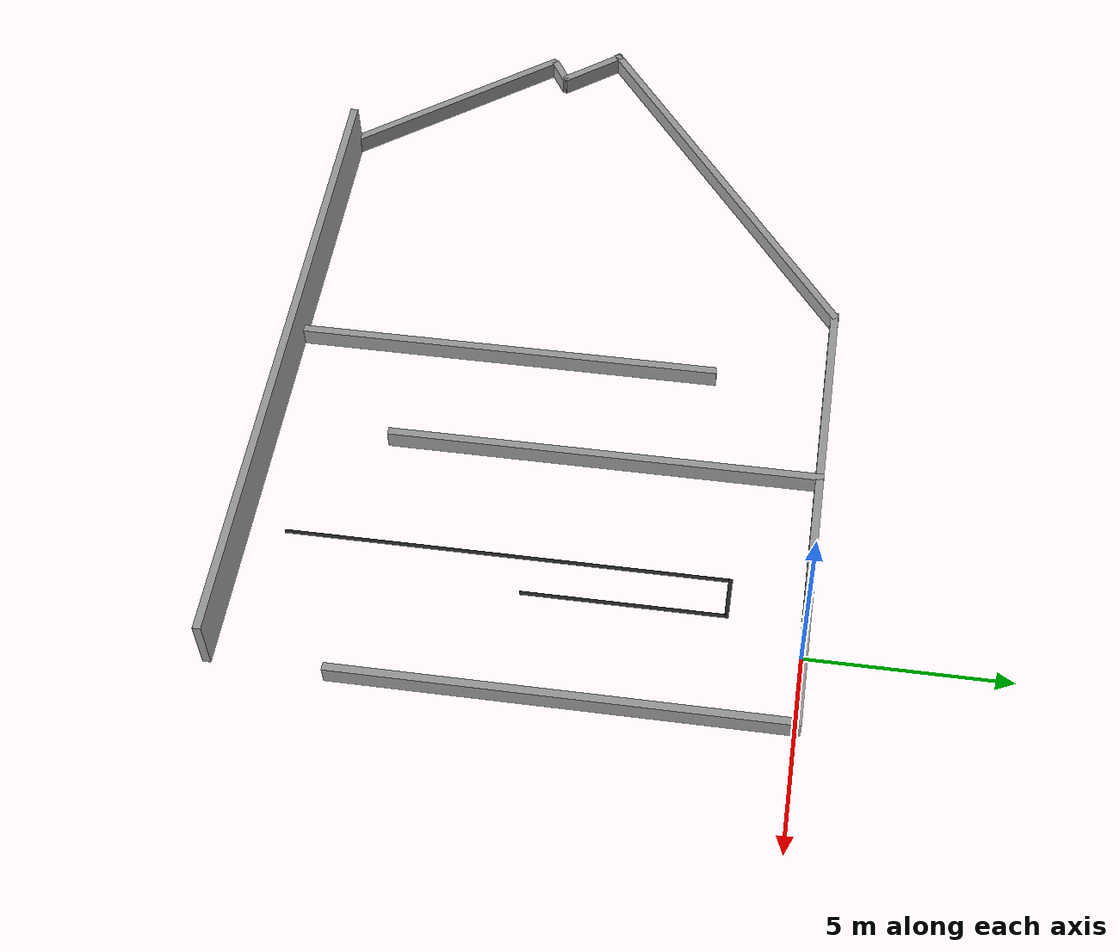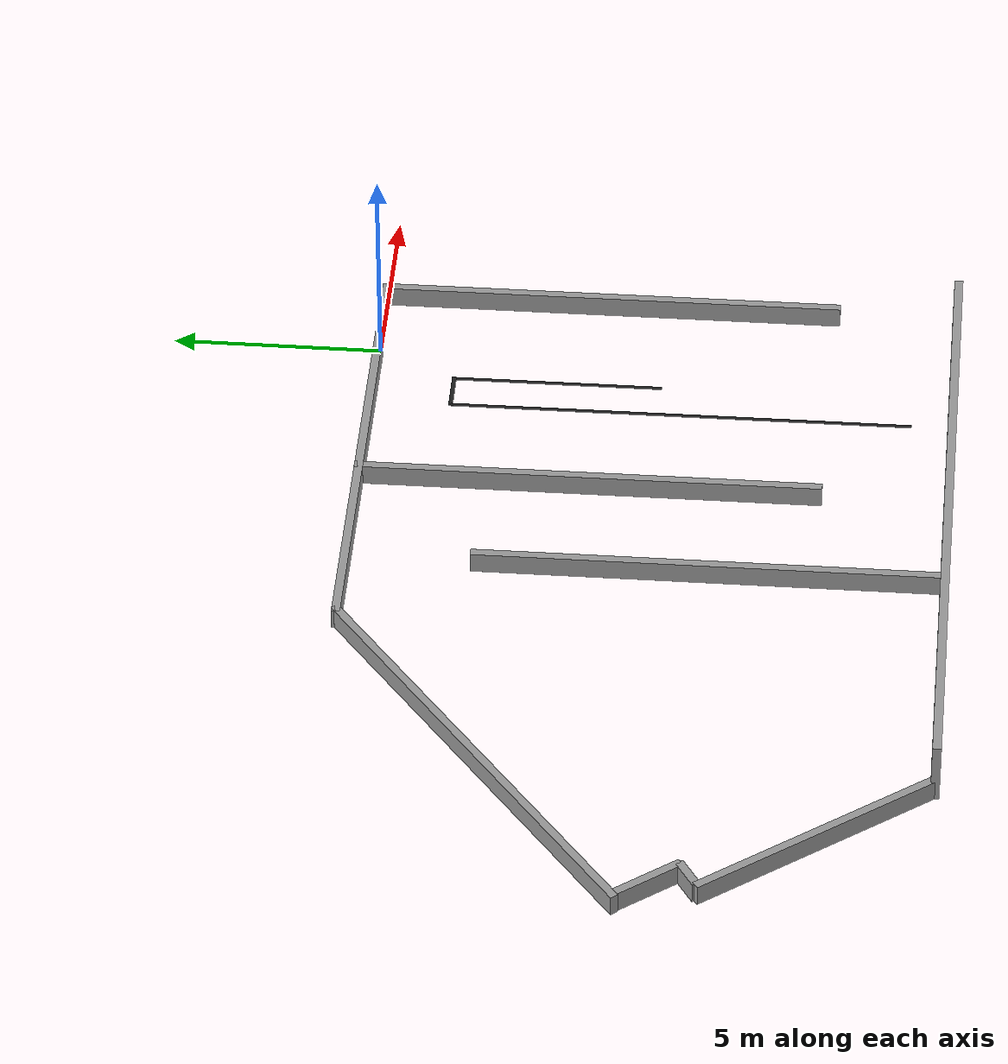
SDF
<?xml version='1.0'?>
<sdf version='1.4'>
  <model name='buvette'>
    <link name='Wall_10'>
      <collision name='Wall_10_Collision'>
        <geometry>
          <box>
            <size>11 0.2 0.5</size>
          </box>
        </geometry>
        <pose>0 0 1.25 0 -0 0</pose>
      </collision>
      <visual name='Wall_10_Visual'>
        <pose>0 0 1.25 0 -0 0</pose>
        <geometry>
          <box>
            <size>11 0.2 0.5</size>
          </box>
        </geometry>
        <material>
          <script>
            <uri>file://media/materials/scripts/gazebo.material</uri>
            <name>Gazebo/Grey</name>
          </script>
        </material>
      </visual>
      <velocity_decay>
        <linear>0</linear>
        <angular>0</angular>
      </velocity_decay>
      <pose>1.9329 -5.5 -1.0 0 0 -1.5708</pose>
    </link>

    <link name='line_1'>

      <visual name='line_1_Visual'>
        <pose>-1 0 1.01 0 -0 0</pose>
        <geometry>
          <box>
            <size>11 0.1 0.0</size>
          </box>
        </geometry>
        <material>
          <script>
            <uri>file://media/materials/scripts/gazebo.material</uri>
            <name>Gazebo/Black</name>
          </script>
        </material>
      </visual>
      <velocity_decay>
        <linear>0</linear>
        <angular>0</angular>
      </velocity_decay>
      <pose>-1.9329 -8.36276 -1.0 0 0 -1.5708</pose>
    </link>

     <link name='line_2'>

      <visual name='line_2_Visual'>
        <pose>-4 1 1.01 0 -0 0</pose>
        <geometry>
          <box>
            <size>5 0.1 0.0</size>
          </box>
        </geometry>
        <material>
          <script>
            <uri>file://media/materials/scripts/gazebo.material</uri>
            <name>Gazebo/Black</name>
          </script>
        </material>
      </visual>
      <velocity_decay>
        <linear>0</linear>
        <angular>0</angular>
      </velocity_decay>
      <pose>-1.9329 -8.36276 -1.0 0 0 -1.5708</pose>
    </link>

    <link name='line_3'>

      <visual name='line_3_Visual'>
        <pose>-6.5 0.5 1.01 0 -0 0</pose>
        <geometry>
          <box>
            <size>0.1 1.1 0.0</size>
          </box>
        </geometry>
        <material>
          <script>
            <uri>file://media/materials/scripts/gazebo.material</uri>
            <name>Gazebo/Black</name>
          </script>
        </material>
      </visual>
      <velocity_decay>
        <linear>0</linear>
        <angular>0</angular>
      </velocity_decay>
      <pose>-1.9329 -8.36276 -1.0 0 0 -1.5708</pose>
    </link>

        <link name='Obstacle_11'>
      <collision name='Obstacle_11_Collision'>
        <geometry>
          <box>
            <size>11 0.2 0.5</size>
          </box>
        </geometry>
        <pose>0 0 1.25 0 -0 0</pose>
      </collision>
      <visual name='Obstacle_11_Visual'>
        <pose>0 0 1.25 0 -0 0</pose>
        <geometry>
          <box>
            <size>11 0.2 0.5</size>
          </box>
        </geometry>
        <material>
          <script>
            <uri>file://media/materials/scripts/gazebo.material</uri>
            <name>Gazebo/Grey</name>
          </script>
        </material>
      </visual>
      <velocity_decay>
        <linear>0</linear>
        <angular>0</angular>
      </velocity_decay>
      <pose>-4.9329 -5.36276 -1.0 0 0 -1.5708</pose>
    </link>
    <link name='Obstacle_12'>
      <collision name='Obstacle_12_Collision'>
        <geometry>
          <box>
            <size>11 0.2 0.5</size>
          </box>
        </geometry>
        <pose>0 0 1.25 0 -0 0</pose>
      </collision>
      <visual name='Obstacle_12_Visual'>
        <pose>0 0 1.25 0 -0 0</pose>
        <geometry>
          <box>
            <size>11 0.2 0.5</size>
          </box>
        </geometry>
        <material>
          <script>
            <uri>file://media/materials/scripts/gazebo.material</uri>
            <name>Gazebo/Grey</name>
          </script>
        </material>
      </visual>
      <velocity_decay>
        <linear>0</linear>
        <angular>0</angular>
      </velocity_decay>
      <pose>-7.9329 -8.36276 -1.0 0 0 -1.5708</pose>
    </link>
    <link name='Wall_12'>
      <collision name='Wall_12_Collision'>
        <geometry>
          <box>
            <size>11.5982 0.2 0.5</size>
          </box>
        </geometry>
        <pose>0 0 1.25 0 -0 0</pose>
      </collision>
      <visual name='Wall_12_Visual'>
        <pose>0 0 1.25 0 -0 0</pose>
        <geometry>
          <box>
            <size>11.5982 0.2 0.5</size>
          </box>
        </geometry>
        <material>
          <script>
            <uri>file://media/materials/scripts/gazebo.material</uri>
            <name>Gazebo/Grey</name>
          </script>
        </material>
      </visual>
      <velocity_decay>
        <linear>0</linear>
        <angular>0</angular>
      </velocity_decay>
      <pose>-14.7036 -3.46095 -1.0 0 0 -2.48709</pose>
    </link>
    <link name='Wall_16'>
      <collision name='Wall_16_Collision'>
        <geometry>
          <box>
            <size>1.90541 0.2 0.5</size>
          </box>
        </geometry>
        <pose>0 0 1.25 0 -0 0</pose>
      </collision>
      <visual name='Wall_16_Visual'>
        <pose>0 0 1.25 0 -0 0</pose>
        <geometry>
          <box>
            <size>1.90541 0.2 0.5</size>
          </box>
        </geometry>
        <material>
          <script>
            <uri>file://media/materials/scripts/gazebo.material</uri>
            <name>Gazebo/Grey</name>
          </script>
        </material>
      </visual>
      <velocity_decay>
        <linear>0</linear>
        <angular>0</angular>
      </velocity_decay>
      <pose>-18.6645 -7.61375 -1.0 0 0 -0.916298</pose>
    </link>
    <link name='Wall_18'>
      <collision name='Wall_18_Collision'>
        <geometry>
          <box>
            <size>0.8 0.2 0.5</size>
          </box>
        </geometry>
        <pose>0 0 1.25 0 -0 0</pose>
      </collision>
      <visual name='Wall_18_Visual'>
        <pose>0 0 1.25 0 -0 0</pose>
        <geometry>
          <box>
            <size>0.8 0.2 0.5</size>
          </box>
        </geometry>
        <material>
          <script>
            <uri>file://media/materials/scripts/gazebo.material</uri>
            <name>Gazebo/Grey</name>
          </script>
        </material>
      </visual>
      <velocity_decay>
        <linear>0</linear>
        <angular>0</angular>
      </velocity_decay>
      <pose>-18.4205 -8.52791 -1.0 0 0 -2.58994</pose>
    </link>
    <link name='Wall_22'>
      <collision name='Wall_22_Collision'>
        <geometry>
          <box>
            <size>6.42 0.2 0.5</size>
          </box>
        </geometry>
        <pose>0 0 1.25 0 -0 0</pose>
      </collision>
      <visual name='Wall_22_Visual'>
        <pose>0 0 1.25 0 -0 0</pose>
        <geometry>
          <box>
            <size>6.42 0.2 0.5</size>
          </box>
        </geometry>
        <material>
          <script>
            <uri>file://media/materials/scripts/gazebo.material</uri>
            <name>Gazebo/Grey</name>
          </script>
        </material>
      </visual>
      <velocity_decay>
        <linear>0</linear>
        <angular>0</angular>
      </velocity_decay>
      <pose>-16.8736 -11.2733 -1.0 0 0 -0.922851</pose>
    </link>
    <link name='Wall_24'>
      <collision name='Wall_24_Collision'>
        <geometry>
          <box>
            <size>16.9694 0.2 1.5</size>
          </box>
        </geometry>
        <pose>0 0 1.25 0 -0 0</pose>
      </collision>
      <visual name='Wall_24_Visual'>
        <pose>0 0 1.25 0 -0 0</pose>
        <geometry>
          <box>
            <size>16.9694 0.2 1.5</size>
          </box>
        </geometry>
        <material>
          <script>
            <uri>file://media/materials/scripts/gazebo.material</uri>
            <name>Gazebo/Grey</name>
          </script>
        </material>
      </visual>
      <velocity_decay>
        <linear>0</linear>
        <angular>0</angular>
      </velocity_decay>
      <pose>-6.58484 -13.8245 -0.5 0 -0 0</pose>
    </link>
    <link name='Wall_6'>
      <collision name='Wall_6_Collision'>
        <geometry>
          <box>
            <size>12.297 0.2 0.5</size>
          </box>
        </geometry>
        <pose>0 0 1.25 0 -0 0</pose>
      </collision>
      <visual name='Wall_6_Visual'>
        <pose>0 0 1.25 0 -0 0</pose>
        <geometry>
          <box>
            <size>12.297 0.2 0.5</size>
          </box>
        </geometry>
        <material>
          <script>
            <uri>file://media/materials/scripts/gazebo.material</uri>
            <name>Gazebo/Grey</name>
          </script>
        </material>
      </visual>
      <velocity_decay>
        <linear>0</linear>
        <angular>0</angular>
      </velocity_decay>
      <pose>-4.1215 0.033 -1.0 0 -0 0</pose>
    </link>

    <static>1</static>
  </model>
</sdf>
